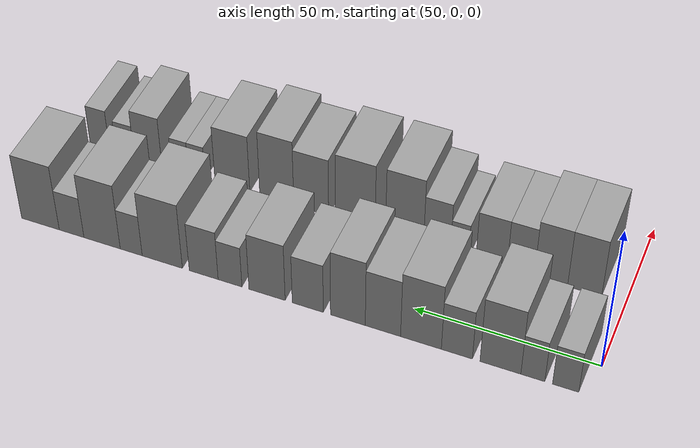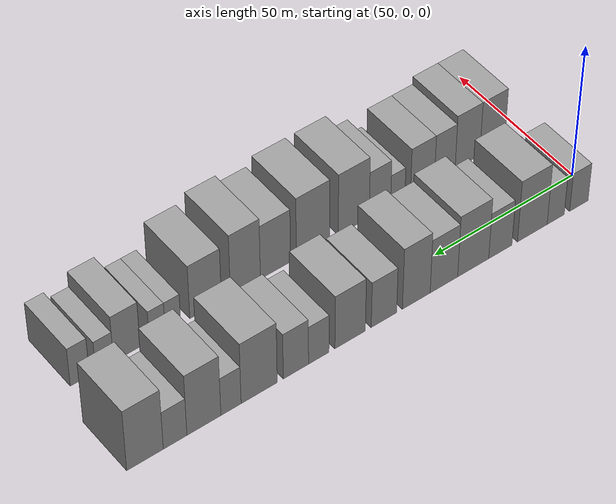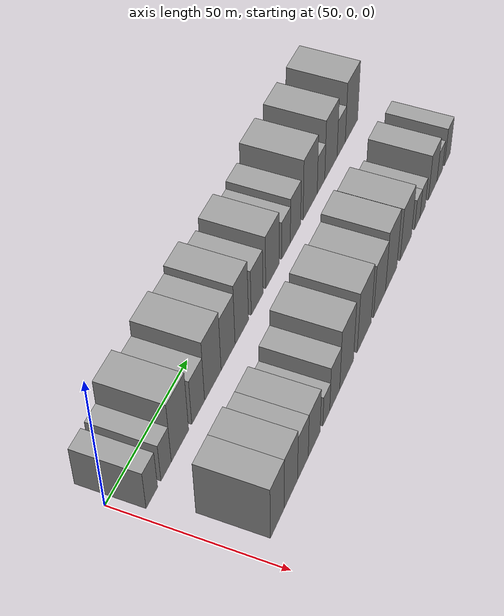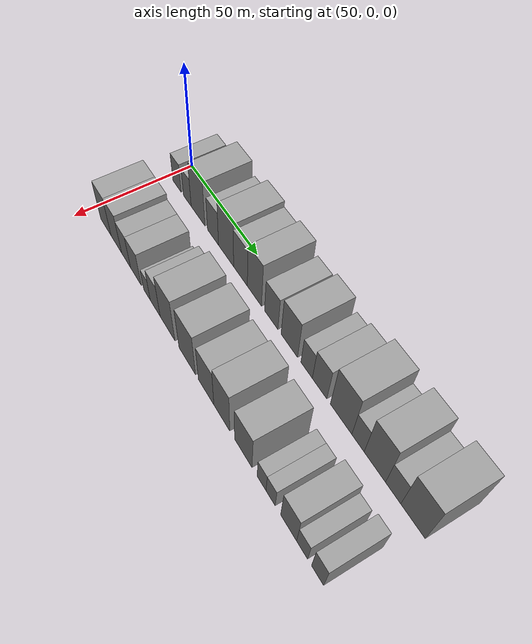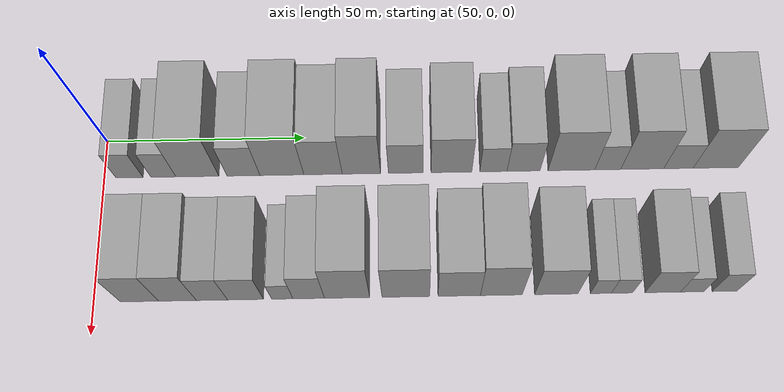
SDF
<sdf version="1.6">
 <world name="default">
  <model name="building_34">
   <static>1</static>
   <pose>50.0000 6.3638 0 0.000000 0.000000 0.000000</pose>
   <link name="link">
    <pose>0 0 7.50 0 0 0</pose>
    <collision name="collision"><geometry><box><size>20.0000 6.7982 15.0000</size></box></geometry></collision>
    <visual name="visual">
     <cast_shadows>0</cast_shadows>
     <geometry><box><size>20.0000 6.7982 15.0000</size></box></geometry>
     <material>
      <script>
       <uri>model://grey_wall/materials/scripts</uri>
       <uri>model://grey_wall/materials/textures</uri>
       <name>vrc/grey_wall</name>
      </script>
     </material>
    </visual>
   </link>
  </model>
  <model name="building_35">
   <static>1</static>
   <pose>50.0000 14.8870 0 0.000000 0.000000 0.000000</pose>
   <link name="link">
    <pose>0 0 7.50 0 0 0</pose>
    <collision name="collision"><geometry><box><size>20.0000 6.2482 15.0000</size></box></geometry></collision>
    <visual name="visual">
     <cast_shadows>0</cast_shadows>
     <geometry><box><size>20.0000 6.2482 15.0000</size></box></geometry>
     <material>
      <script>
       <uri>model://grey_wall/materials/scripts</uri>
       <uri>model://grey_wall/materials/textures</uri>
       <name>vrc/grey_wall</name>
      </script>
     </material>
    </visual>
   </link>
  </model>
  <model name="building_36">
   <static>1</static>
   <pose>50.0000 23.4039 0 0.000000 0.000000 0.000000</pose>
   <link name="link">
    <pose>0 0 12.00 0 0 0</pose>
    <collision name="collision"><geometry><box><size>20.0000 10.7855 24.0000</size></box></geometry></collision>
    <visual name="visual">
     <cast_shadows>0</cast_shadows>
     <geometry><box><size>20.0000 10.7855 24.0000</size></box></geometry>
     <material>
      <script>
       <uri>model://grey_wall/materials/scripts</uri>
       <uri>model://grey_wall/materials/textures</uri>
       <name>vrc/grey_wall</name>
      </script>
     </material>
    </visual>
   </link>
  </model>
  <model name="building_37">
   <static>1</static>
   <pose>50.0000 34.9487 0 0.000000 0.000000 0.000000</pose>
   <link name="link">
    <pose>0 0 9.00 0 0 0</pose>
    <collision name="collision"><geometry><box><size>20.0000 8.3042 18.0000</size></box></geometry></collision>
    <visual name="visual">
     <cast_shadows>0</cast_shadows>
     <geometry><box><size>20.0000 8.3042 18.0000</size></box></geometry>
     <material>
      <script>
       <uri>model://grey_wall/materials/scripts</uri>
       <uri>model://grey_wall/materials/textures</uri>
       <name>vrc/grey_wall</name>
      </script>
     </material>
    </visual>
   </link>
  </model>
  <model name="building_38">
   <static>1</static>
   <pose>50.0000 44.6083 0 0.000000 0.000000 0.000000</pose>
   <link name="link">
    <pose>0 0 12.00 0 0 0</pose>
    <collision name="collision"><geometry><box><size>20.0000 11.0150 24.0000</size></box></geometry></collision>
    <visual name="visual">
     <cast_shadows>0</cast_shadows>
     <geometry><box><size>20.0000 11.0150 24.0000</size></box></geometry>
     <material>
      <script>
       <uri>model://grey_wall/materials/scripts</uri>
       <uri>model://grey_wall/materials/textures</uri>
       <name>vrc/grey_wall</name>
      </script>
     </material>
    </visual>
   </link>
  </model>
  <model name="building_39">
   <static>1</static>
   <pose>50.0000 54.9373 0 0.000000 0.000000 0.000000</pose>
   <link name="link">
    <pose>0 0 10.50 0 0 0</pose>
    <collision name="collision"><geometry><box><size>20.0000 9.6429 21.0000</size></box></geometry></collision>
    <visual name="visual">
     <cast_shadows>0</cast_shadows>
     <geometry><box><size>20.0000 9.6429 21.0000</size></box></geometry>
     <material>
      <script>
       <uri>model://grey_wall/materials/scripts</uri>
       <uri>model://grey_wall/materials/textures</uri>
       <name>vrc/grey_wall</name>
      </script>
     </material>
    </visual>
   </link>
  </model>
  <model name="building_40">
   <static>1</static>
   <pose>50.0000 64.5607 0 0.000000 0.000000 0.000000</pose>
   <link name="link">
    <pose>0 0 12.00 0 0 0</pose>
    <collision name="collision"><geometry><box><size>20.0000 9.6038 24.0000</size></box></geometry></collision>
    <visual name="visual">
     <cast_shadows>0</cast_shadows>
     <geometry><box><size>20.0000 9.6038 24.0000</size></box></geometry>
     <material>
      <script>
       <uri>model://grey_wall/materials/scripts</uri>
       <uri>model://grey_wall/materials/textures</uri>
       <name>vrc/grey_wall</name>
      </script>
     </material>
    </visual>
   </link>
  </model>
  <model name="building_41">
   <static>1</static>
   <pose>50.0000 75.7096 0 0.000000 0.000000 0.000000</pose>
   <link name="link">
    <pose>0 0 9.00 0 0 0</pose>
    <collision name="collision"><geometry><box><size>20.0000 8.6940 18.0000</size></box></geometry></collision>
    <visual name="visual">
     <cast_shadows>0</cast_shadows>
     <geometry><box><size>20.0000 8.6940 18.0000</size></box></geometry>
     <material>
      <script>
       <uri>model://grey_wall/materials/scripts</uri>
       <uri>model://grey_wall/materials/textures</uri>
       <name>vrc/grey_wall</name>
      </script>
     </material>
    </visual>
   </link>
  </model>
  <model name="building_42">
   <static>1</static>
   <pose>50.0000 87.1924 0 0.000000 0.000000 0.000000</pose>
   <link name="link">
    <pose>0 0 10.50 0 0 0</pose>
    <collision name="collision"><geometry><box><size>20.0000 10.2716 21.0000</size></box></geometry></collision>
    <visual name="visual">
     <cast_shadows>0</cast_shadows>
     <geometry><box><size>20.0000 10.2716 21.0000</size></box></geometry>
     <material>
      <script>
       <uri>model://grey_wall/materials/scripts</uri>
       <uri>model://grey_wall/materials/textures</uri>
       <name>vrc/grey_wall</name>
      </script>
     </material>
    </visual>
   </link>
  </model>
  <model name="building_43">
   <static>1</static>
   <pose>50.0000 97.7403 0 0.000000 0.000000 0.000000</pose>
   <link name="link">
    <pose>0 0 7.50 0 0 0</pose>
    <collision name="collision"><geometry><box><size>20.0000 6.8241 15.0000</size></box></geometry></collision>
    <visual name="visual">
     <cast_shadows>0</cast_shadows>
     <geometry><box><size>20.0000 6.8241 15.0000</size></box></geometry>
     <material>
      <script>
       <uri>model://grey_wall/materials/scripts</uri>
       <uri>model://grey_wall/materials/textures</uri>
       <name>vrc/grey_wall</name>
      </script>
     </material>
    </visual>
   </link>
  </model>
  <model name="building_44">
   <static>1</static>
   <pose>50.0000 105.3268 0 0.000000 0.000000 0.000000</pose>
   <link name="link">
    <pose>0 0 9.00 0 0 0</pose>
    <collision name="collision"><geometry><box><size>20.0000 8.3489 18.0000</size></box></geometry></collision>
    <visual name="visual">
     <cast_shadows>0</cast_shadows>
     <geometry><box><size>20.0000 8.3489 18.0000</size></box></geometry>
     <material>
      <script>
       <uri>model://grey_wall/materials/scripts</uri>
       <uri>model://grey_wall/materials/textures</uri>
       <name>vrc/grey_wall</name>
      </script>
     </material>
    </visual>
   </link>
  </model>
  <model name="building_45">
   <static>1</static>
   <pose>50.0000 117.3871 0 0.000000 0.000000 0.000000</pose>
   <link name="link">
    <pose>0 0 12.00 0 0 0</pose>
    <collision name="collision"><geometry><box><size>20.0000 11.7717 24.0000</size></box></geometry></collision>
    <visual name="visual">
     <cast_shadows>0</cast_shadows>
     <geometry><box><size>20.0000 11.7717 24.0000</size></box></geometry>
     <material>
      <script>
       <uri>model://grey_wall/materials/scripts</uri>
       <uri>model://grey_wall/materials/textures</uri>
       <name>vrc/grey_wall</name>
      </script>
     </material>
    </visual>
   </link>
  </model>
  <model name="building_46">
   <static>1</static>
   <pose>50.0000 126.5301 0 0.000000 0.000000 0.000000</pose>
   <link name="link">
    <pose>0 0 7.50 0 0 0</pose>
    <collision name="collision"><geometry><box><size>20.0000 6.5144 15.0000</size></box></geometry></collision>
    <visual name="visual">
     <cast_shadows>0</cast_shadows>
     <geometry><box><size>20.0000 6.5144 15.0000</size></box></geometry>
     <material>
      <script>
       <uri>model://grey_wall/materials/scripts</uri>
       <uri>model://grey_wall/materials/textures</uri>
       <name>vrc/grey_wall</name>
      </script>
     </material>
    </visual>
   </link>
  </model>
  <model name="building_47">
   <static>1</static>
   <pose>50.0000 135.2163 0 0.000000 0.000000 0.000000</pose>
   <link name="link">
    <pose>0 0 12.00 0 0 0</pose>
    <collision name="collision"><geometry><box><size>20.0000 10.8580 24.0000</size></box></geometry></collision>
    <visual name="visual">
     <cast_shadows>0</cast_shadows>
     <geometry><box><size>20.0000 10.8580 24.0000</size></box></geometry>
     <material>
      <script>
       <uri>model://grey_wall/materials/scripts</uri>
       <uri>model://grey_wall/materials/textures</uri>
       <name>vrc/grey_wall</name>
      </script>
     </material>
    </visual>
   </link>
  </model>
  <model name="building_48">
   <static>1</static>
   <pose>50.0000 144.3716 0 0.000000 0.000000 0.000000</pose>
   <link name="link">
    <pose>0 0 7.50 0 0 0</pose>
    <collision name="collision"><geometry><box><size>20.0000 7.4525 15.0000</size></box></geometry></collision>
    <visual name="visual">
     <cast_shadows>0</cast_shadows>
     <geometry><box><size>20.0000 7.4525 15.0000</size></box></geometry>
     <material>
      <script>
       <uri>model://grey_wall/materials/scripts</uri>
       <uri>model://grey_wall/materials/textures</uri>
       <name>vrc/grey_wall</name>
      </script>
     </material>
    </visual>
   </link>
  </model>
  <model name="building_49">
   <static>1</static>
   <pose>50.0000 153.8203 0 0.000000 0.000000 0.000000</pose>
   <link name="link">
    <pose>0 0 12.00 0 0 0</pose>
    <collision name="collision"><geometry><box><size>20.0000 11.4448 24.0000</size></box></geometry></collision>
    <visual name="visual">
     <cast_shadows>0</cast_shadows>
     <geometry><box><size>20.0000 11.4448 24.0000</size></box></geometry>
     <material>
      <script>
       <uri>model://grey_wall/materials/scripts</uri>
       <uri>model://grey_wall/materials/textures</uri>
       <name>vrc/grey_wall</name>
      </script>
     </material>
    </visual>
   </link>
  </model>
  <model name="building_98">
   <static>1</static>
   <pose>82.0000 11.1010 0 0.000000 0.000000 0.000000</pose>
   <link name="link">
    <pose>0 0 10.50 0 0 0</pose>
    <collision name="collision"><geometry><box><size>20.0000 9.2397 21.0000</size></box></geometry></collision>
    <visual name="visual">
     <cast_shadows>0</cast_shadows>
     <geometry><box><size>20.0000 9.2397 21.0000</size></box></geometry>
     <material>
      <script>
       <uri>model://grey_wall/materials/scripts</uri>
       <uri>model://grey_wall/materials/textures</uri>
       <name>vrc/grey_wall</name>
      </script>
     </material>
    </visual>
   </link>
  </model>
  <model name="building_99">
   <static>1</static>
   <pose>82.0000 20.2631 0 0.000000 0.000000 0.000000</pose>
   <link name="link">
    <pose>0 0 10.50 0 0 0</pose>
    <collision name="collision"><geometry><box><size>20.0000 9.0844 21.0000</size></box></geometry></collision>
    <visual name="visual">
     <cast_shadows>0</cast_shadows>
     <geometry><box><size>20.0000 9.0844 21.0000</size></box></geometry>
     <material>
      <script>
       <uri>model://grey_wall/materials/scripts</uri>
       <uri>model://grey_wall/materials/textures</uri>
       <name>vrc/grey_wall</name>
      </script>
     </material>
    </visual>
   </link>
  </model>
  <model name="building_100">
   <static>1</static>
   <pose>82.0000 28.5610 0 0.000000 0.000000 0.000000</pose>
   <link name="link">
    <pose>0 0 9.00 0 0 0</pose>
    <collision name="collision"><geometry><box><size>20.0000 7.5115 18.0000</size></box></geometry></collision>
    <visual name="visual">
     <cast_shadows>0</cast_shadows>
     <geometry><box><size>20.0000 7.5115 18.0000</size></box></geometry>
     <material>
      <script>
       <uri>model://grey_wall/materials/scripts</uri>
       <uri>model://grey_wall/materials/textures</uri>
       <name>vrc/grey_wall</name>
      </script>
     </material>
    </visual>
   </link>
  </model>
  <model name="building_101">
   <static>1</static>
   <pose>82.0000 36.6432 0 0.000000 0.000000 0.000000</pose>
   <link name="link">
    <pose>0 0 9.00 0 0 0</pose>
    <collision name="collision"><geometry><box><size>20.0000 8.6530 18.0000</size></box></geometry></collision>
    <visual name="visual">
     <cast_shadows>0</cast_shadows>
     <geometry><box><size>20.0000 8.6530 18.0000</size></box></geometry>
     <material>
      <script>
       <uri>model://grey_wall/materials/scripts</uri>
       <uri>model://grey_wall/materials/textures</uri>
       <name>vrc/grey_wall</name>
      </script>
     </material>
    </visual>
   </link>
  </model>
  <model name="building_102">
   <static>1</static>
   <pose>82.0000 45.5241 0 0.000000 0.000000 0.000000</pose>
   <link name="link">
    <pose>0 0 6.00 0 0 0</pose>
    <collision name="collision"><geometry><box><size>20.0000 5.1088 12.0000</size></box></geometry></collision>
    <visual name="visual">
     <cast_shadows>0</cast_shadows>
     <geometry><box><size>20.0000 5.1088 12.0000</size></box></geometry>
     <material>
      <script>
       <uri>model://grey_wall/materials/scripts</uri>
       <uri>model://grey_wall/materials/textures</uri>
       <name>vrc/grey_wall</name>
      </script>
     </material>
    </visual>
   </link>
  </model>
  <model name="building_103">
   <static>1</static>
   <pose>82.0000 51.8944 0 0.000000 0.000000 0.000000</pose>
   <link name="link">
    <pose>0 0 9.00 0 0 0</pose>
    <collision name="collision"><geometry><box><size>20.0000 7.6317 18.0000</size></box></geometry></collision>
    <visual name="visual">
     <cast_shadows>0</cast_shadows>
     <geometry><box><size>20.0000 7.6317 18.0000</size></box></geometry>
     <material>
      <script>
       <uri>model://grey_wall/materials/scripts</uri>
       <uri>model://grey_wall/materials/textures</uri>
       <name>vrc/grey_wall</name>
      </script>
     </material>
    </visual>
   </link>
  </model>
  <model name="building_104">
   <static>1</static>
   <pose>82.0000 61.1485 0 0.000000 0.000000 0.000000</pose>
   <link name="link">
    <pose>0 0 12.00 0 0 0</pose>
    <collision name="collision"><geometry><box><size>20.0000 10.8766 24.0000</size></box></geometry></collision>
    <visual name="visual">
     <cast_shadows>0</cast_shadows>
     <geometry><box><size>20.0000 10.8766 24.0000</size></box></geometry>
     <material>
      <script>
       <uri>model://grey_wall/materials/scripts</uri>
       <uri>model://grey_wall/materials/textures</uri>
       <name>vrc/grey_wall</name>
      </script>
     </material>
    </visual>
   </link>
  </model>
  <model name="building_105">
   <static>1</static>
   <pose>82.0000 75.3329 0 0.000000 0.000000 0.000000</pose>
   <link name="link">
    <pose>0 0 12.00 0 0 0</pose>
    <collision name="collision"><geometry><box><size>20.0000 11.4922 24.0000</size></box></geometry></collision>
    <visual name="visual">
     <cast_shadows>0</cast_shadows>
     <geometry><box><size>20.0000 11.4922 24.0000</size></box></geometry>
     <material>
      <script>
       <uri>model://grey_wall/materials/scripts</uri>
       <uri>model://grey_wall/materials/textures</uri>
       <name>vrc/grey_wall</name>
      </script>
     </material>
    </visual>
   </link>
  </model>
  <model name="building_106">
   <static>1</static>
   <pose>82.0000 88.1980 0 0.000000 0.000000 0.000000</pose>
   <link name="link">
    <pose>0 0 10.50 0 0 0</pose>
    <collision name="collision"><geometry><box><size>20.0000 10.2379 21.0000</size></box></geometry></collision>
    <visual name="visual">
     <cast_shadows>0</cast_shadows>
     <geometry><box><size>20.0000 10.2379 21.0000</size></box></geometry>
     <material>
      <script>
       <uri>model://grey_wall/materials/scripts</uri>
       <uri>model://grey_wall/materials/textures</uri>
       <name>vrc/grey_wall</name>
      </script>
     </material>
    </visual>
   </link>
  </model>
  <model name="building_107">
   <static>1</static>
   <pose>82.0000 98.3725 0 0.000000 0.000000 0.000000</pose>
   <link name="link">
    <pose>0 0 12.00 0 0 0</pose>
    <collision name="collision"><geometry><box><size>20.0000 10.1111 24.0000</size></box></geometry></collision>
    <visual name="visual">
     <cast_shadows>0</cast_shadows>
     <geometry><box><size>20.0000 10.1111 24.0000</size></box></geometry>
     <material>
      <script>
       <uri>model://grey_wall/materials/scripts</uri>
       <uri>model://grey_wall/materials/textures</uri>
       <name>vrc/grey_wall</name>
      </script>
     </material>
    </visual>
   </link>
  </model>
  <model name="building_108">
   <static>1</static>
   <pose>82.0000 111.6665 0 0.000000 0.000000 0.000000</pose>
   <link name="link">
    <pose>0 0 10.50 0 0 0</pose>
    <collision name="collision"><geometry><box><size>20.0000 10.4770 21.0000</size></box></geometry></collision>
    <visual name="visual">
     <cast_shadows>0</cast_shadows>
     <geometry><box><size>20.0000 10.4770 21.0000</size></box></geometry>
     <material>
      <script>
       <uri>model://grey_wall/materials/scripts</uri>
       <uri>model://grey_wall/materials/textures</uri>
       <name>vrc/grey_wall</name>
      </script>
     </material>
    </visual>
   </link>
  </model>
  <model name="building_109">
   <static>1</static>
   <pose>82.0000 122.4484 0 0.000000 0.000000 0.000000</pose>
   <link name="link">
    <pose>0 0 6.00 0 0 0</pose>
    <collision name="collision"><geometry><box><size>20.0000 5.0867 12.0000</size></box></geometry></collision>
    <visual name="visual">
     <cast_shadows>0</cast_shadows>
     <geometry><box><size>20.0000 5.0867 12.0000</size></box></geometry>
     <material>
      <script>
       <uri>model://grey_wall/materials/scripts</uri>
       <uri>model://grey_wall/materials/textures</uri>
       <name>vrc/grey_wall</name>
      </script>
     </material>
    </visual>
   </link>
  </model>
  <model name="building_110">
   <static>1</static>
   <pose>82.0000 127.5790 0 0.000000 0.000000 0.000000</pose>
   <link name="link">
    <pose>0 0 6.00 0 0 0</pose>
    <collision name="collision"><geometry><box><size>20.0000 5.1746 12.0000</size></box></geometry></collision>
    <visual name="visual">
     <cast_shadows>0</cast_shadows>
     <geometry><box><size>20.0000 5.1746 12.0000</size></box></geometry>
     <material>
      <script>
       <uri>model://grey_wall/materials/scripts</uri>
       <uri>model://grey_wall/materials/textures</uri>
       <name>vrc/grey_wall</name>
      </script>
     </material>
    </visual>
   </link>
  </model>
  <model name="building_111">
   <static>1</static>
   <pose>82.0000 137.4413 0 0.000000 0.000000 0.000000</pose>
   <link name="link">
    <pose>0 0 9.00 0 0 0</pose>
    <collision name="collision"><geometry><box><size>20.0000 8.5499 18.0000</size></box></geometry></collision>
    <visual name="visual">
     <cast_shadows>0</cast_shadows>
     <geometry><box><size>20.0000 8.5499 18.0000</size></box></geometry>
     <material>
      <script>
       <uri>model://grey_wall/materials/scripts</uri>
       <uri>model://grey_wall/materials/textures</uri>
       <name>vrc/grey_wall</name>
      </script>
     </material>
    </visual>
   </link>
  </model>
  <model name="building_112">
   <static>1</static>
   <pose>82.0000 144.5726 0 0.000000 0.000000 0.000000</pose>
   <link name="link">
    <pose>0 0 6.00 0 0 0</pose>
    <collision name="collision"><geometry><box><size>20.0000 5.7128 12.0000</size></box></geometry></collision>
    <visual name="visual">
     <cast_shadows>0</cast_shadows>
     <geometry><box><size>20.0000 5.7128 12.0000</size></box></geometry>
     <material>
      <script>
       <uri>model://grey_wall/materials/scripts</uri>
       <uri>model://grey_wall/materials/textures</uri>
       <name>vrc/grey_wall</name>
      </script>
     </material>
    </visual>
   </link>
  </model>
  <model name="building_113">
   <static>1</static>
   <pose>82.0000 152.4551 0 0.000000 0.000000 0.000000</pose>
   <link name="link">
    <pose>0 0 7.50 0 0 0</pose>
    <collision name="collision"><geometry><box><size>20.0000 6.0523 15.0000</size></box></geometry></collision>
    <visual name="visual">
     <cast_shadows>0</cast_shadows>
     <geometry><box><size>20.0000 6.0523 15.0000</size></box></geometry>
     <material>
      <script>
       <uri>model://grey_wall/materials/scripts</uri>
       <uri>model://grey_wall/materials/textures</uri>
       <name>vrc/grey_wall</name>
      </script>
     </material>
    </visual>
   </link>
  </model>
 </world>
</sdf>
